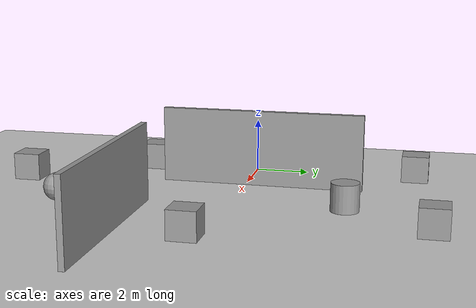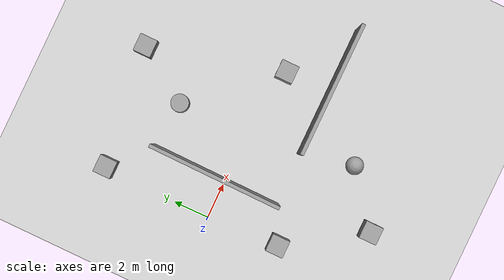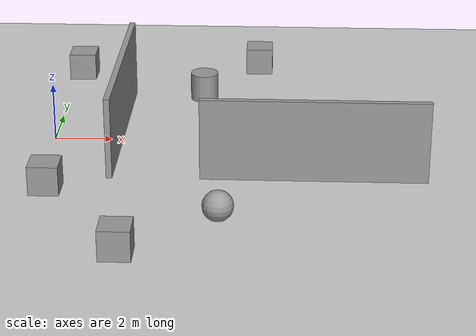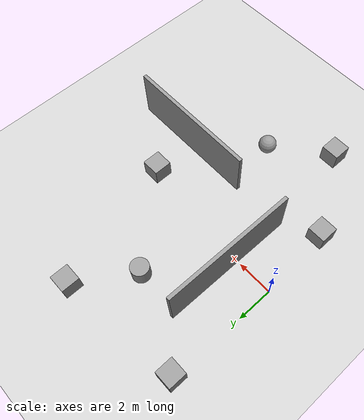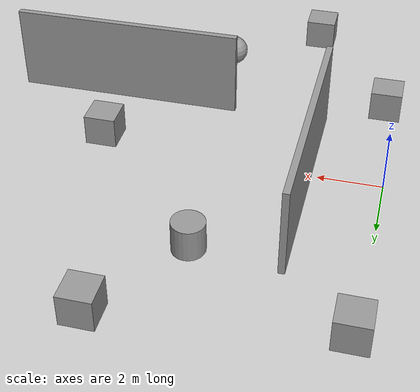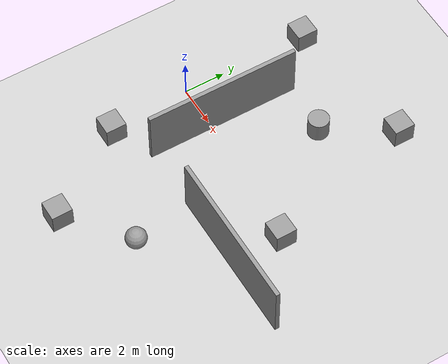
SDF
<sdf version="1.4">
 <world name="default">
  <light name="sun" type="directional">
   <pose>0 0 10 0 -0 0</pose>
   <diffuse>0.8 0.8 0.8 1</diffuse>
   <specular>0.2 0.2 0.2 1</specular>
   <attenuation>
    <range>1000</range>
    <constant>0.9</constant>
    <linear>0.01</linear>
    <quadratic>0.001</quadratic>
   </attenuation>
   <direction>-0.5 0.1 -0.9</direction>
  </light>
  <model name="ground_plane">
   <static>1</static>
   <link name="link">
    <collision name="collision">
     <geometry><plane><normal>0 0 1</normal><size>100 100</size></plane></geometry>
     <surface><friction><ode><mu>100</mu><mu2>50</mu2></ode></friction></surface>
    </collision>
    <visual name="visual">
     <cast_shadows>0</cast_shadows>
     <geometry><plane><normal>0 0 1</normal><size>100 100</size></plane></geometry>
     <material>
      <script><uri>file://media/materials/scripts/gazebo.material</uri><name>Gazebo/Grey</name></script>
     </material>
    </visual>
    <velocity_decay><linear>0</linear><angular>0</angular></velocity_decay>
   </link>
  </model>
  <physics type="ode">
   <max_step_size>0.001</max_step_size>
   <real_time_factor>1</real_time_factor>
   <real_time_update_rate>1000</real_time_update_rate>
   <gravity>0 0 -9.8</gravity>
  </physics>
  <scene><ambient>0.4 0.4 0.4 1</ambient><background>0.7 0.7 0.7 1</background><shadows>1</shadows></scene>
  <spherical_coordinates>
   <surface_model>EARTH_WGS84</surface_model>
   <latitude_deg>0</latitude_deg>
   <longitude_deg>0</longitude_deg>
   <elevation>0</elevation>
   <heading_deg>0</heading_deg>
  </spherical_coordinates>
  <model name="grey_wall">
   <static>1</static>
   <link name="link">
    <pose>0 0 1.4 0 -0 0</pose>
    <collision name="collision"><geometry><box><size>7.5 0.2 2.8</size></box></geometry></collision>
    <visual name="visual">
     <cast_shadows>0</cast_shadows>
     <geometry><box><size>7.5 0.2 2.8</size></box></geometry>
     <material>
      <script>
       <uri>model://grey_wall/materials/scripts</uri>
       <uri>model://grey_wall/materials/textures</uri>
       <name>vrc/grey_wall</name>
      </script>
     </material>
    </visual>
    <velocity_decay><linear>0</linear><angular>0</angular></velocity_decay>
   </link>
   <pose>2.2905 0.59665 -0 0 0 -1.57811</pose>
  </model>
  <model name="unit_box_1">
   <pose>0.189567 6.16179 0.5 0 -0 0</pose>
   <link name="link">
    <inertial>
     <mass>1</mass>
     <inertia><ixx>1</ixx><ixy>0</ixy><ixz>0</ixz><iyy>1</iyy><iyz>0</iyz><izz>1</izz></inertia>
    </inertial>
    <collision name="collision"><geometry><box><size>1 1 1</size></box></geometry></collision>
    <visual name="visual">
     <geometry><box><size>1 1 1</size></box></geometry>
     <material>
      <script><uri>file://media/materials/scripts/gazebo.material</uri><name>Gazebo/Grey</name></script>
     </material>
    </visual>
    <velocity_decay><linear>0</linear><angular>0</angular></velocity_decay>
   </link>
   <static>0</static>
  </model>
  <model name="unit_box_2">
   <pose>0.312889 -4.05652 0.5 0 -0 0</pose>
   <link name="link">
    <inertial>
     <mass>1</mass>
     <inertia><ixx>1</ixx><ixy>0</ixy><ixz>0</ixz><iyy>1</iyy><iyz>0</iyz><izz>1</izz></inertia>
    </inertial>
    <collision name="collision"><geometry><box><size>1 1 1</size></box></geometry></collision>
    <visual name="visual">
     <geometry><box><size>1 1 1</size></box></geometry>
     <material>
      <script><uri>file://media/materials/scripts/gazebo.material</uri><name>Gazebo/Grey</name></script>
     </material>
    </visual>
    <velocity_decay><linear>0</linear><angular>0</angular></velocity_decay>
   </link>
   <static>0</static>
  </model>
  <model name="unit_box_3">
   <pose>3.10124 -8.29542 0.5 0 -0 0</pose>
   <link name="link">
    <inertial>
     <mass>1</mass>
     <inertia><ixx>1</ixx><ixy>0</ixy><ixz>0</ixz><iyy>1</iyy><iyz>0</iyz><izz>1</izz></inertia>
    </inertial>
    <collision name="collision"><geometry><box><size>1 1 1</size></box></geometry></collision>
    <visual name="visual">
     <geometry><box><size>1 1 1</size></box></geometry>
     <material>
      <script><uri>file://media/materials/scripts/gazebo.material</uri><name>Gazebo/Grey</name></script>
     </material>
    </visual>
    <velocity_decay><linear>0</linear><angular>0</angular></velocity_decay>
   </link>
   <static>0</static>
  </model>
  <model name="unit_box_4">
   <pose>9 -0.489056 0.5 0 -0 0</pose>
   <link name="link">
    <inertial>
     <mass>1</mass>
     <inertia><ixx>1</ixx><ixy>0</ixy><ixz>0</ixz><iyy>1</iyy><iyz>0</iyz><izz>1</izz></inertia>
    </inertial>
    <collision name="collision"><geometry><box><size>1 1 1</size></box></geometry></collision>
    <visual name="visual">
     <geometry><box><size>1 1 1</size></box></geometry>
     <material>
      <script><uri>file://media/materials/scripts/gazebo.material</uri><name>Gazebo/Grey</name></script>
     </material>
    </visual>
    <velocity_decay><linear>0</linear><angular>0</angular></velocity_decay>
   </link>
   <static>0</static>
  </model>
  <model name="grey_wall_0">
   <static>1</static>
   <link name="link">
    <pose>0 0 1.4 0 -0 0</pose>
    <collision name="collision"><geometry><box><size>7.5 0.2 2.8</size></box></geometry></collision>
    <visual name="visual">
     <cast_shadows>0</cast_shadows>
     <geometry><box><size>7.5 0.2 2.8</size></box></geometry>
     <material>
      <script>
       <uri>model://grey_wall/materials/scripts</uri>
       <uri>model://grey_wall/materials/textures</uri>
       <name>vrc/grey_wall</name>
      </script>
     </material>
    </visual>
    <velocity_decay><linear>0</linear><angular>0</angular></velocity_decay>
   </link>
   <pose>9 -3 0 0 -0 0</pose>
  </model>
  <model name="unit_sphere_1">
   <pose>6 -6 0.5 0 -0 0</pose>
   <link name="link">
    <inertial>
     <mass>1</mass>
     <inertia><ixx>1</ixx><ixy>0</ixy><ixz>0</ixz><iyy>1</iyy><iyz>0</iyz><izz>1</izz></inertia>
    </inertial>
    <collision name="collision"><geometry><sphere><radius>0.5</radius></sphere></geometry></collision>
    <visual name="visual">
     <geometry><sphere><radius>0.5</radius></sphere></geometry>
     <material>
      <script><uri>file://media/materials/scripts/gazebo.material</uri><name>Gazebo/Grey</name></script>
     </material>
    </visual>
    <velocity_decay><linear>0</linear><angular>0</angular></velocity_decay>
   </link>
   <static>0</static>
  </model>
  <model name="unit_cylinder_1">
   <pose>5 4 0.499998 0 -0 0</pose>
   <link name="link">
    <inertial>
     <mass>1</mass>
     <inertia><ixx>1</ixx><ixy>0</ixy><ixz>0</ixz><iyy>1</iyy><iyz>0</iyz><izz>1</izz></inertia>
    </inertial>
    <collision name="collision">
     <geometry><cylinder><radius>0.5</radius><length>1</length></cylinder></geometry>
    </collision>
    <visual name="visual">
     <geometry><cylinder><radius>0.5</radius><length>1</length></cylinder></geometry>
     <material>
      <script><uri>file://media/materials/scripts/gazebo.material</uri><name>Gazebo/Grey</name></script>
     </material>
    </visual>
    <velocity_decay><linear>0</linear><angular>0</angular></velocity_decay>
   </link>
   <static>0</static>
  </model>
  <model name="unit_box_1_0">
   <pose>7 7 0.5 0 -0 0</pose>
   <link name="link">
    <inertial>
     <mass>1</mass>
     <inertia><ixx>1</ixx><ixy>0</ixy><ixz>0</ixz><iyy>1</iyy><iyz>0</iyz><izz>1</izz></inertia>
    </inertial>
    <collision name="collision"><geometry><box><size>1 1 1</size></box></geometry></collision>
    <visual name="visual">
     <geometry><box><size>1 1 1</size></box></geometry>
     <material>
      <script><uri>file://media/materials/scripts/gazebo.material</uri><name>Gazebo/Grey</name></script>
     </material>
    </visual>
    <velocity_decay><linear>0</linear><angular>0</angular></velocity_decay>
   </link>
   <static>0</static>
  </model>
 </world>
</sdf>
